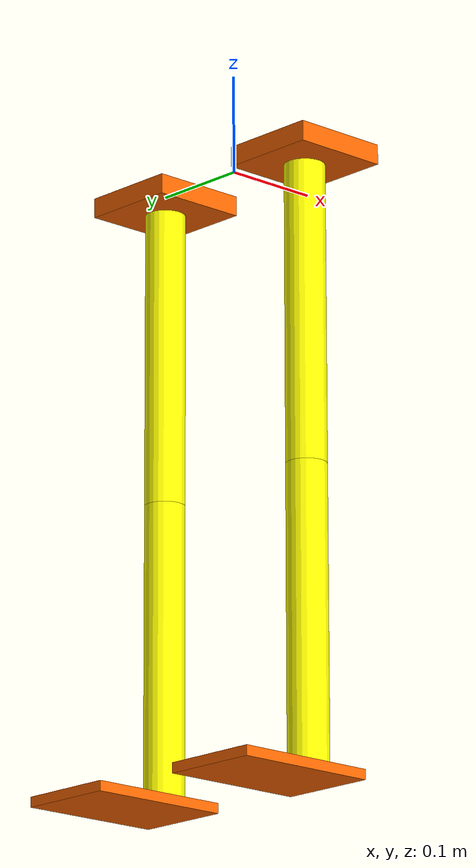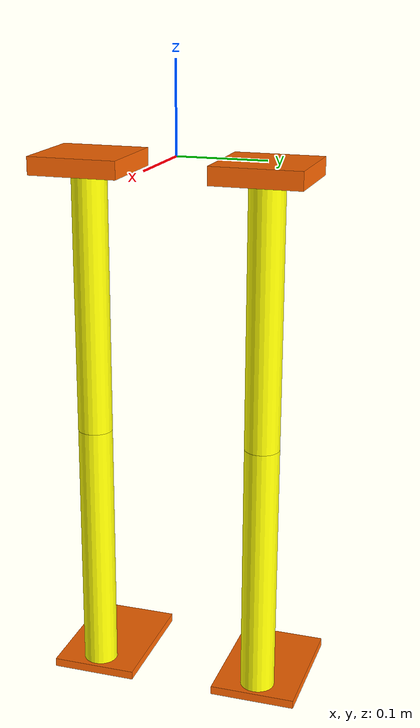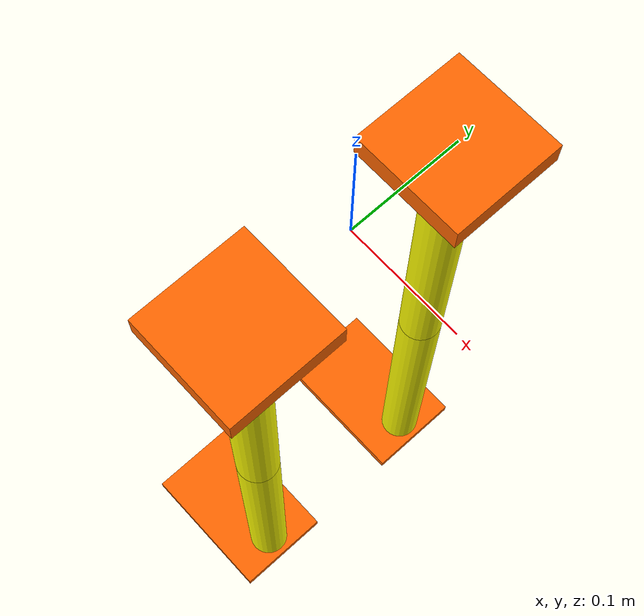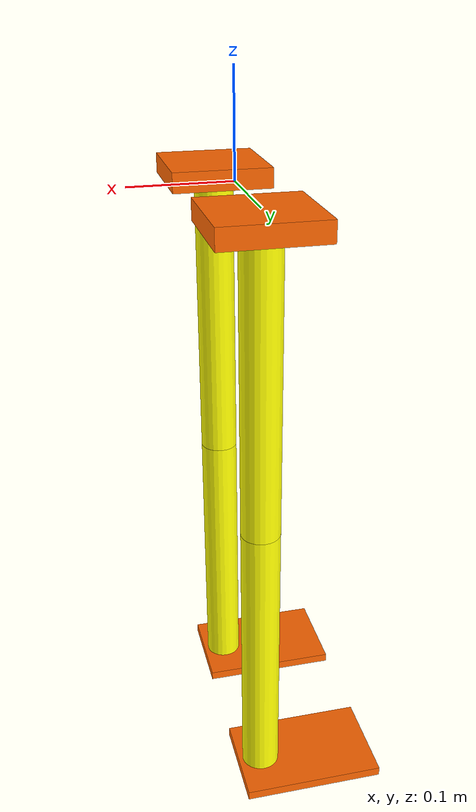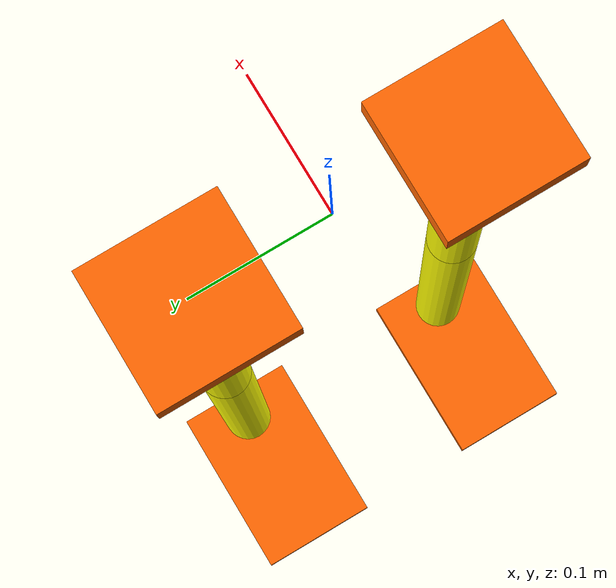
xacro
<?xml version="1.0"?>
<robot xmlns:xacro="http://www.ros.org/wiki/xacro"
    name="exoskeleton">
    <material name="yellow">
        <color rgba="1.0 1.0 0.0 1.0" />
    </material>

    <material name="orange">
        <color rgba="1.0 0.4 0.0 1.0" />
    </material>
    <link name="base_link" />

    <link name="pelvis_link" />

    <joint name="base_to_pelvis" type="fixed">
        <parent link="base_link" />
        <child link="pelvis_link" />
        <origin xyz="0 0 0" />
    </joint>
    <xacro:macro name="leg" params="prefix y_offset">
        <link name="${prefix}_hip_link">
            <visual>
                <origin xyz="0 0 -0.01" />
                <geometry>
                    <box size="0.1 0.1 0.02" />
                </geometry>
                <material name="orange" />
            </visual>

            <collision>
                <origin xyz="0 0 -0.01" />
                <geometry>
                    <box size="0.1 0.1 0.02" />
                </geometry>
            </collision>
        </link>
        <link name="${prefix}_thigh_link">
            <visual>
                <origin xyz="0 0 -0.15" />
                <geometry>
                    <cylinder radius="0.02" length="0.3" />
                </geometry>
                <material name="yellow" />
            </visual>

            <collision>
                <origin xyz="0 0 -0.15" />
                <geometry>
                    <box size="0.02 0.02 0.3" />
                </geometry>
            </collision>
        </link>
        <link name="${prefix}_calf_link">
            <visual>
                <origin xyz="0 0 -0.15" />
                <geometry>
                    <cylinder radius="0.02" length="0.3" />
                </geometry>
                <material name="yellow" />
            </visual>

            <collision>
                <origin xyz="0 0 -0.15" />
                <geometry>
                    <box size="0.02 0.02 0.3" />
                </geometry>
            </collision>
        </link>
        <link name="${prefix}_foot_link">
            <visual>
                <origin xyz="0 0 -0.005" />
                <geometry>
                    <box size="0.15 0.10 0.01" />
                </geometry>
                <material name="orange" />
            </visual>

            <collision>
                <origin xyz="0 0 -0.005" />
                <geometry>
                    <box size="0.15 0.10 0.01" />
                </geometry>
            </collision>
        </link>
        <joint name="${prefix}_pelvis_joint" type="fixed">
            <parent link="pelvis_link" />
            <child link="${prefix}_hip_link" />
            <origin xyz="0 ${y_offset} 0" />
        </joint>
        <joint name="${prefix}_hip_joint" type="revolute">
            <parent link="${prefix}_hip_link" />
            <child link="${prefix}_thigh_link" />

            <origin xyz="0 0 -0.02" />

            <axis xyz="0 1 0" />

            <limit
                lower="0.0"
                upper="1.57"
                effort="100"
                velocity="100" />
        </joint>
        <joint name="${prefix}_knee_joint" type="revolute">
            <parent link="${prefix}_thigh_link" />
            <child link="${prefix}_calf_link" />

            <origin xyz="0 0 -0.30" />

            <axis xyz="0 1 0" />

            <limit
                lower="-1.57"
                upper="0"
                effort="100"
                velocity="100" />
        </joint>
        <joint name="${prefix}_foot_joint" type="fixed">
            <parent link="${prefix}_calf_link" />
            <child link="${prefix}_foot_link" />

            <origin xyz="-0.05 0 -0.30" />
        </joint>

    </xacro:macro>

    <xacro:leg
        prefix="left"
        y_offset="-0.10" />

    <xacro:leg
        prefix="right"
        y_offset="0.10" />

</robot>
